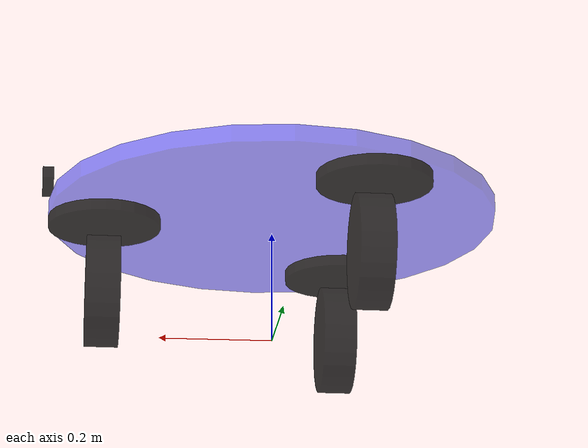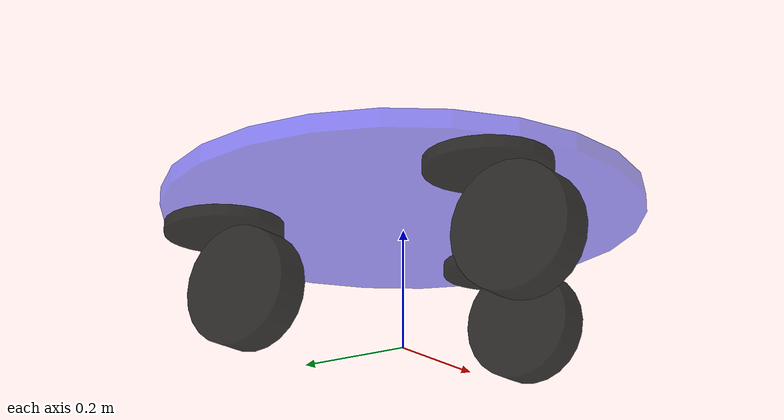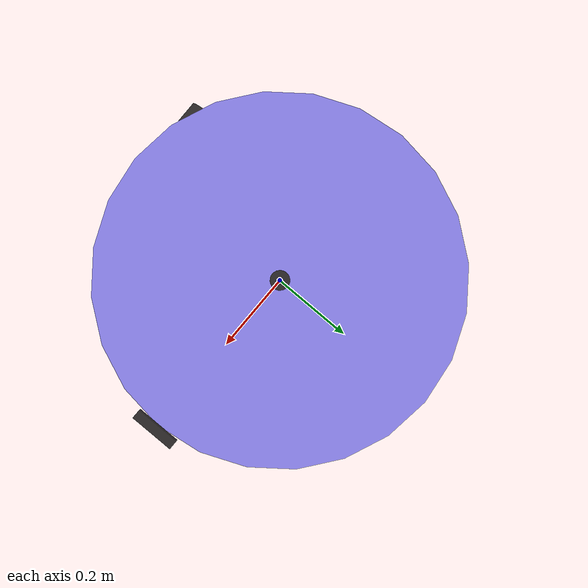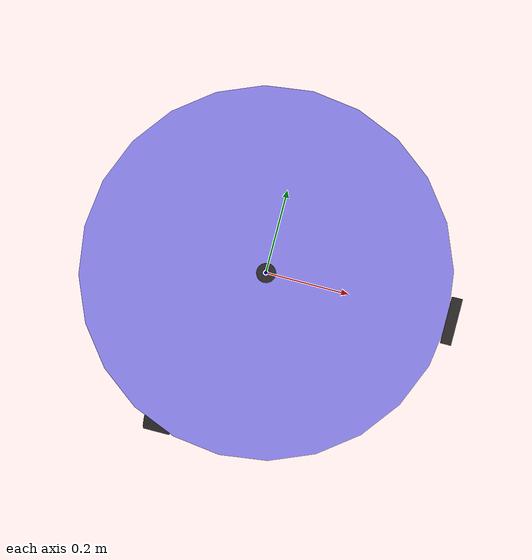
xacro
<?xml version="1.0"?>
<robot xmlns:xacro="http://www.ros.org/wiki/xacro" name="chassis">
    <xacro:include filename="$(find description_omni_caster)/urdf/base.urdf.xacro" />
    <xacro:include filename="$(find description_omni_caster)/urdf/actuator/caster.urdf.xacro" />

    <xacro:include filename="$(find description_omni_caster)/urdf/sensor/imu.urdf.xacro" />
    <xacro:include filename="$(find description_omni_caster)/urdf/sensor/laser.urdf.xacro" />
    <xacro:include filename="$(find description_omni_caster)/urdf/sensor/camera.urdf.xacro" />

    <!-- math -->
    <xacro:property name="cos30" value="0.86602" />
    <xacro:property name="sin30" value="0.5" />
    <!-- declare active_omni_directional_caster params -->
    <xacro:property name="h" value="0.3" /><!-- h是偏执舵轮与底盘安装点与底盘中心距离  应当 大于 offset+wheel_radius -->
    <xacro:property name="wheel_radius" value="0.1" />
    <xacro:property name="wheel_length" value="0.06" />
    <xacro:property name="steering_radius" value="0.1" />
    <xacro:property name="steering_length" value="0.02" />
    <xacro:property name="offset" value="0.05" />
    <xacro:property name="chassis_length" value="0.03" />
    <xacro:property name="chassis_radius" value="0.4" />

    <xacro:base_xacro length="${chassis_length}" radius="${chassis_radius}" base_footprint_hight="${0.001+2.0*wheel_radius+steering_length+chassis_length/2.0}" />

    <xacro:caster_xacro wheel_name="left" chassis_length="${chassis_length}" wheel_radius="${wheel_radius}" wheel_length="${wheel_length}" steering_radius="${steering_radius}" steering_length="${steering_length}"  offset="${offset}" steering_x="${-h*sin30}" steering_y="${h*cos30}"/>
    <xacro:caster_xacro wheel_name="right" chassis_length="${chassis_length}" wheel_radius="${wheel_radius}" wheel_length="${wheel_length}" steering_radius="${steering_radius}" steering_length="${steering_length}"  offset="${offset}" steering_x="${-h*sin30}" steering_y="${-h*cos30}"/>
    <xacro:caster_xacro wheel_name="forward" chassis_length="${chassis_length}" wheel_radius="${wheel_radius}" wheel_length="${wheel_length}" steering_radius="${steering_radius}" steering_length="${steering_length}"  offset="${offset}" steering_x="${h}" steering_y="0"/>
    <xacro:imu_xacro xyz="0 0 0.02" />
    <xacro:laser_xacro xyz="0 0 0.08" />
    <xacro:camera_xacro xyz="0.402 0 0.05" />

    <xacro:include filename="$(find description_omni_caster)/urdf/chassis.ros2_control.xacro" />
    <xacro:caster_ros2_control />
    <xacro:include filename="$(find description_omni_caster)/urdf/plugins/gazebo_sensor_plugin.xacro" />
    <xacro:gazebo_sensor_imu />
</robot>

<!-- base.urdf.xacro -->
<robot xmlns:xacro="http://www.ros.org/wiki/xacro">
   <xacro:include filename="$(find description_omni_caster)/urdf/common_inertia.xacro" />
    <xacro:macro name="base_xacro" params="length radius base_footprint_hight">
        <link name="base_footprint" />

        <joint name="base_joint" type="fixed">
            <parent link="base_footprint" />
            <child link="base_link" />
            <origin xyz="0.0 0.0 ${base_footprint_hight}" rpy="0 0 0" />
        </joint>

        <link name="base_link">
            <visual>
                <origin xyz="0 0 0.0" rpy="0 0 0" />
                <geometry>
                    <cylinder length="${length}" radius="${radius}" />
                </geometry>
                <material name="blue">
                    <color rgba="0.1 0.1 1.0 0.5"/>
                </material>
            </visual>
            <collision>
                <origin xyz="0 0 0.0" rpy="0 0 0" />
                <geometry>
                    <cylinder length="${length}" radius="${radius}" />
                </geometry>
                <material name="blue">
                    <color rgba="0.1 0.1 1.0 0.5"/>
                </material>
            </collision>
            <xacro:cylinder_inertia m="1.0" r="${radius}" h="${length}"/>
        </link>

    </xacro:macro>

</robot>

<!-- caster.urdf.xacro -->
<robot xmlns:xacro="http://www.ros.org/wiki/xacro">
   <xacro:include filename="$(find description_omni_caster)/urdf/common_inertia.xacro" />
    <xacro:macro name="caster_xacro" params="wheel_name  wheel_radius wheel_length steering_radius steering_length chassis_length offset steering_x steering_y  ">

        <link name="${wheel_name}_steering_link">
            <visual>
                <origin xyz="0 0 0" rpy="0 0 0" />
                <geometry>
                    <cylinder length="${steering_length}" radius="${steering_radius}" />
                </geometry>
                <material name="black">
                    <color rgba="0.0 0.0 0.0 0.8"/>
                </material>
            </visual>
            <collision>
                <origin xyz="0 0 0" rpy="0 0 0" />
                <geometry>
                    <cylinder length="${steering_length}" radius="${steering_radius}" />
                </geometry>
                <material name="black">
                    <color rgba="0.0 0.6 0.0 0.8"/>
                </material>
            </collision>
            <xacro:cylinder_inertia m="0.1" h="${steering_length}" r="${steering_radius}"/>
        </link>
        <gazebo reference="${wheel_name}_steering_link">
            <mu1 value="20.0" />
            <mu2 value="20.0" />
            <kp value="1000000000.0" />
            <kd value="1.0" />
        </gazebo>
        <joint name="${wheel_name}_steering_joint" type="continuous">
            <parent link="base_link" />
            <child link="${wheel_name}_steering_link" />
            <origin xyz="${steering_x} ${steering_y} ${-1.0*steering_length/2.0-chassis_length/2.0}"  rpy="0 0 1.5708" />
            <axis xyz="0 0 1" />
        </joint>

        <link name="${wheel_name}_wheel_link">
            <visual>
                <origin xyz="0 0 0" rpy="1.57079 0 0" />
                <geometry>
                    <cylinder length="${wheel_length}" radius="${wheel_radius}" />
                </geometry>
                <material name="black">
                    <color rgba="0.0 0.0 0.0 0.8"/>
                </material>
            </visual>
            <collision>
                <origin xyz="0 0 0" rpy="1.57079 0 0" />
                <geometry>
                    <cylinder length="${wheel_length}" radius="${wheel_radius}" />
                </geometry>
                <material name="black">
                    <color rgba="0.0 0.0 0.0 0.8"/>
                </material>
            </collision>
            <xacro:cylinder_inertia m="0.1" h="${wheel_length}" r="${wheel_radius}"/>
        </link>
        <gazebo reference="${wheel_name}_wheel_link">
            <mu1 value="20.0" />
            <mu2 value="20.0" />
            <kp value="1000000000.0" />
            <kd value="1.0" />
        </gazebo>

        <joint name="${wheel_name}_wheel_joint" type="continuous">
            <parent link="${wheel_name}_steering_link"/>
            <child link="${wheel_name}_wheel_link" />
            <origin xyz="${-1.0*offset} 0 ${-1.0*steering_length/2.0-wheel_radius-0.001}" />
            <axis xyz="0 1 0" />
        </joint>
    </xacro:macro>
</robot>

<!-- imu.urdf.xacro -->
<robot xmlns:xacro="http://www.ros.org/wiki/xacro">
   <xacro:include filename="$(find description_omni_caster)/urdf/common_inertia.xacro" />
    <xacro:macro name="imu_xacro" params="xyz">
        <link name="imu_link">
            <visual>
                <origin xyz="0 0 00" rpy="0 0 0" />
                <geometry>
                    <box size="0.02 0.02 0.02" />
                </geometry>
                <material name="black">
                    <color rgba="0 0 0 0.8" />
                </material>
            </visual>
            <collision>
                <origin xyz="0 0 00" rpy="0 0 0" />
                <geometry>
                    <box size="0.02 0.02 0.02" />
                </geometry>
                <material name="black">
                    <color rgba="0 0 0 0.8" />
                </material>
            </collision>
            <xacro:box_inertia m="0.01" w="0.02" d="0.02" h="0.02"/>
        </link>

        <joint name="imu_joint" type="fixed">
            <parent link="base_link" />
            <child link="imu_link" />
            <origin xyz="${xyz}" />
        </joint>
    </xacro:macro>
</robot>

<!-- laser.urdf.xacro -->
<robot xmlns:xacro="http://www.ros.org/wiki/xacro">
   <xacro:include filename="$(find description_omni_caster)/urdf/common_inertia.xacro" />
    <xacro:macro name="laser_xacro" params="xyz">
        <gazebo reference="laser_cylinder_link">
            <material>Gazebo/Black</material>
        </gazebo>
        <gazebo reference="laser_link">
            <material>Gazebo/Black</material>
        </gazebo>

        <!-- ============雷达支撑杆================ -->
        <link name="laser_cylinder_link">
            <visual>
                <origin xyz="0 0 0" rpy="0 0 0" />
                <geometry>
                    <cylinder length="0.10" radius="0.01" />
                </geometry>
                <material name="black">
                    <color rgba="0.0 0.0 0.0 0.8" />
                </material>
            </visual>
            <collision>
                <origin xyz="0 0 0" rpy="0 0 0" />
                <geometry>
                    <cylinder length="0.10" radius="0.01" />
                </geometry>
                <material name="black">
                    <color rgba="0.0 0.0 0.0 0.8" />
                </material>
            </collision>
            <xacro:cylinder_inertia m="0.01" r="0.01" h="0.10" />
        </link>

        <joint name="laser_cylinder_joint" type="fixed">
            <parent link="base_link" />
            <child link="laser_cylinder_link" />
            <origin xyz="${xyz}" />
        </joint>
        <!-- ============雷达================ -->
        <link name="laser_link">
            <visual>
                <origin xyz="0 0 0" rpy="0 0 0" />
                <geometry>
                    <cylinder length="0.02" radius="0.02" />
                </geometry>
                <material name="black">
                    <color rgba="0.0 0.0 0.0 0.8" />
                </material>
            </visual>
            <collision>
                <origin xyz="0 0 0" rpy="0 0 0" />
                <geometry>
                    <cylinder length="0.02" radius="0.02" />
                </geometry>
                <material name="black">
                    <color rgba="0.0 0.0 0.0 0.8" />
                </material>
            </collision>
            <xacro:cylinder_inertia m="0.03" r="0.02" h="0.02" />
        </link>

        <joint name="laser_joint" type="fixed">
            <parent link="laser_cylinder_link" />
            <child link="laser_link" />
            <origin xyz="0 0 0.05" />
        </joint>

    </xacro:macro>

</robot>

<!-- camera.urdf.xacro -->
<robot xmlns:xacro="http://www.ros.org/wiki/xacro">
   <xacro:include filename="$(find description_omni_caster)/urdf/common_inertia.xacro" />
    <xacro:macro name="camera_xacro" params="xyz">
        <!-- ============相机模块================ -->
        <link name="camera_link">
            <visual>
                <origin xyz="0 0 0.0" rpy="0 0 0" />
                <geometry>
                    <box size="0.02 0.10 0.02" />
                </geometry>
                <material name="black">
                    <color rgba="0.0 0.0 0.0 0.8"/>
                </material>
            </visual>
            <collision>
                <origin xyz="0 0 0.0" rpy="0 0 0" />
                <geometry>
                    <box size="0.02 0.10 0.02" />
                </geometry>
                <material name="black">
                    <color rgba="0.0 0.0 0.0 0.8"/>
                </material>
            </collision>
            <xacro:box_inertia m="0.01" w="0.02" h="0.10" d="0.02" />
        </link>
        <link name="camera_optical_link"></link>
        <joint name="camera_optical_joint" type="fixed">
            <parent link="camera_link" />
            <child link="camera_optical_link" />
            <origin xyz="0 0 0" rpy="${-pi/2} 0 ${-pi/2}" />
        </joint>

        <joint name="camera_joint" type="fixed">
            <parent link="base_link" />
            <child link="camera_link" />
            <origin xyz="${xyz}" />
        </joint>
    </xacro:macro>

</robot>
